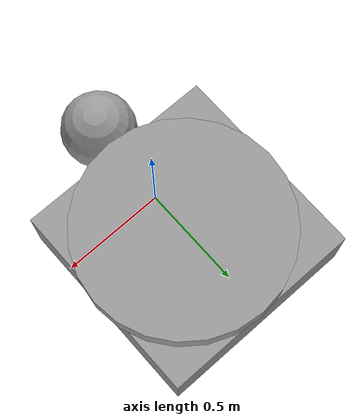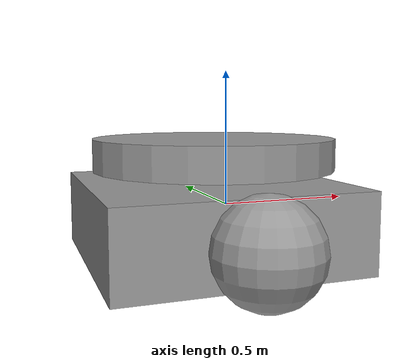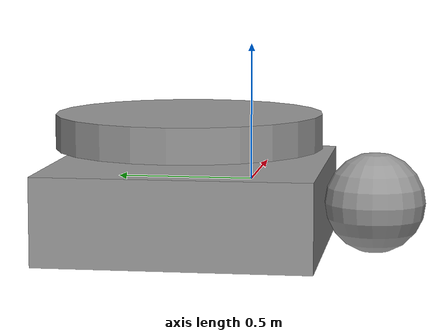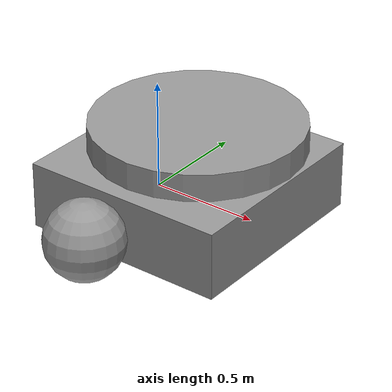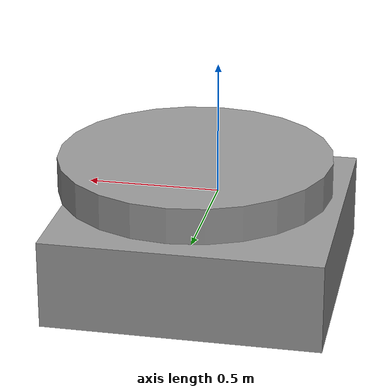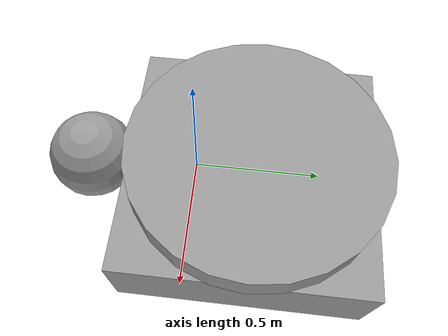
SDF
<?xml version='1.0'?>
<sdf version='1.7'>
  <model name='robotShip'>
    <link name='link_0'>
      <inertial>
        <mass>0.129554</mass>
        <inertia>
          <ixx>0.0082783</ixx>
          <ixy>0</ixy>
          <ixz>0</ixz>
          <iyy>0.0082783</iyy>
          <iyz>0</iyz>
          <izz>0.0161942</izz>
        </inertia>
        <pose>0 0 0 0 -0 0</pose>
      </inertial>
      <pose>0.03761 0.239048 0.173648 0 -0 0</pose>
      <visual name='visual'>
        <pose>0 0 0 0 -0 0</pose>
        <geometry>
          <cylinder>
            <radius>0.5</radius>
            <length>0.129553</length>
          </cylinder>
        </geometry>
        <material>
          <lighting>1</lighting>
          <script>
            <uri>file://media/materials/scripts/gazebo.material</uri>
            <name>Gazebo/Grey</name>
          </script>
          <shader type='pixel'/>
          <emissive>0 0 0 1</emissive>
        </material>
        <transparency>0</transparency>
        <cast_shadows>1</cast_shadows>
      </visual>
      <collision name='collision'>
        <laser_retro>0</laser_retro>
        <max_contacts>10</max_contacts>
        <pose>0 0 0 0 -0 0</pose>
        <geometry>
          <cylinder>
            <radius>0.5</radius>
            <length>0.129553</length>
          </cylinder>
        </geometry>
        <surface>
          <friction>
            <ode>
              <mu>1</mu>
              <mu2>1</mu2>
              <fdir1>0 0 0</fdir1>
              <slip1>0</slip1>
              <slip2>0</slip2>
            </ode>
            <torsional>
              <coefficient>1</coefficient>
              <patch_radius>0</patch_radius>
              <surface_radius>0</surface_radius>
              <use_patch_radius>1</use_patch_radius>
              <ode>
                <slip>0</slip>
              </ode>
            </torsional>
          </friction>
          <bounce>
            <restitution_coefficient>0</restitution_coefficient>
            <threshold>1e+06</threshold>
          </bounce>
          <contact>
            <collide_without_contact>0</collide_without_contact>
            <collide_without_contact_bitmask>1</collide_without_contact_bitmask>
            <collide_bitmask>1</collide_bitmask>
            <ode>
              <soft_cfm>0</soft_cfm>
              <soft_erp>0.2</soft_erp>
              <kp>1e+13</kp>
              <kd>1</kd>
              <max_vel>0.01</max_vel>
              <min_depth>0</min_depth>
            </ode>
            <bullet>
              <split_impulse>1</split_impulse>
              <split_impulse_penetration_threshold>-0.01</split_impulse_penetration_threshold>
              <soft_cfm>0</soft_cfm>
              <soft_erp>0.2</soft_erp>
              <kp>1e+13</kp>
              <kd>1</kd>
            </bullet>
          </contact>
        </surface>
      </collision>
    </link>
    <link name='link_1'>
      <inertial>
        <mass>0.0509107</mass>
        <inertia>
          <ixx>0.000699365</ixx>
          <ixy>0</ixy>
          <ixz>0</ixz>
          <iyy>0.000699365</iyy>
          <iyz>0</iyz>
          <izz>0.000699365</izz>
        </inertia>
        <pose>0 0 0 0 -0 0</pose>
      </inertial>
      <pose>-0.039655 -0.462186 -0.074538 0 -0 0</pose>
      <visual name='visual'>
        <pose>0 0 0 0 -0 0</pose>
        <geometry>
          <sphere>
            <radius>0.185318</radius>
          </sphere>
        </geometry>
        <material>
          <lighting>1</lighting>
          <script>
            <uri>file://media/materials/scripts/gazebo.material</uri>
            <name>Gazebo/Grey</name>
          </script>
          <shader type='pixel'/>
          <emissive>0 0 0 1</emissive>
        </material>
        <transparency>0</transparency>
        <cast_shadows>1</cast_shadows>
      </visual>
      <collision name='collision'>
        <laser_retro>0</laser_retro>
        <max_contacts>10</max_contacts>
        <pose>0 0 0 0 -0 0</pose>
        <geometry>
          <sphere>
            <radius>0.185318</radius>
          </sphere>
        </geometry>
        <surface>
          <friction>
            <ode>
              <mu>1</mu>
              <mu2>1</mu2>
              <fdir1>0 0 0</fdir1>
              <slip1>0</slip1>
              <slip2>0</slip2>
            </ode>
            <torsional>
              <coefficient>1</coefficient>
              <patch_radius>0</patch_radius>
              <surface_radius>0</surface_radius>
              <use_patch_radius>1</use_patch_radius>
              <ode>
                <slip>0</slip>
              </ode>
            </torsional>
          </friction>
          <bounce>
            <restitution_coefficient>0</restitution_coefficient>
            <threshold>1e+06</threshold>
          </bounce>
          <contact>
            <collide_without_contact>0</collide_without_contact>
            <collide_without_contact_bitmask>1</collide_without_contact_bitmask>
            <collide_bitmask>1</collide_bitmask>
            <ode>
              <soft_cfm>0</soft_cfm>
              <soft_erp>0.2</soft_erp>
              <kp>1e+13</kp>
              <kd>1</kd>
              <max_vel>0.01</max_vel>
              <min_depth>0</min_depth>
            </ode>
            <bullet>
              <split_impulse>1</split_impulse>
              <split_impulse_penetration_threshold>-0.01</split_impulse_penetration_threshold>
              <soft_cfm>0</soft_cfm>
              <soft_erp>0.2</soft_erp>
              <kp>1e+13</kp>
              <kd>1</kd>
            </bullet>
          </contact>
        </surface>
      </collision>
    </link>
    <link name='link_2'>
      <inertial>
        <mass>0.32103</mass>
        <inertia>
          <ixx>0.0295173</ixx>
          <ixy>0</ixy>
          <ixz>0</ixz>
          <iyy>0.029444</iyy>
          <iyz>0</iyz>
          <izz>0.0534317</izz>
        </inertia>
        <pose>0 0 0 0 -0 0</pose>
      </inertial>
      <pose>0.002045 0.223132 -0.099117 0 -0 0</pose>
      <visual name='visual'>
        <pose>0 0 0 0 -0 0</pose>
        <geometry>
          <box>
            <size>0.998629 1 0.321477</size>
          </box>
        </geometry>
        <material>
          <lighting>1</lighting>
          <script>
            <uri>file://media/materials/scripts/gazebo.material</uri>
            <name>Gazebo/Grey</name>
          </script>
          <shader type='pixel'/>
          <emissive>0 0 0 1</emissive>
        </material>
        <transparency>0</transparency>
        <cast_shadows>1</cast_shadows>
      </visual>
      <collision name='collision'>
        <laser_retro>0</laser_retro>
        <max_contacts>10</max_contacts>
        <pose>0 0 0 0 -0 0</pose>
        <geometry>
          <box>
            <size>0.998629 1 0.321477</size>
          </box>
        </geometry>
        <surface>
          <friction>
            <ode>
              <mu>1</mu>
              <mu2>1</mu2>
              <fdir1>0 0 0</fdir1>
              <slip1>0</slip1>
              <slip2>0</slip2>
            </ode>
            <torsional>
              <coefficient>1</coefficient>
              <patch_radius>0</patch_radius>
              <surface_radius>0</surface_radius>
              <use_patch_radius>1</use_patch_radius>
              <ode>
                <slip>0</slip>
              </ode>
            </torsional>
          </friction>
          <bounce>
            <restitution_coefficient>0</restitution_coefficient>
            <threshold>1e+06</threshold>
          </bounce>
          <contact>
            <collide_without_contact>0</collide_without_contact>
            <collide_without_contact_bitmask>1</collide_without_contact_bitmask>
            <collide_bitmask>1</collide_bitmask>
            <ode>
              <soft_cfm>0</soft_cfm>
              <soft_erp>0.2</soft_erp>
              <kp>1e+13</kp>
              <kd>1</kd>
              <max_vel>0.01</max_vel>
              <min_depth>0</min_depth>
            </ode>
            <bullet>
              <split_impulse>1</split_impulse>
              <split_impulse_penetration_threshold>-0.01</split_impulse_penetration_threshold>
              <soft_cfm>0</soft_cfm>
              <soft_erp>0.2</soft_erp>
              <kp>1e+13</kp>
              <kd>1</kd>
            </bullet>
          </contact>
        </surface>
      </collision>
    </link>
    <joint name='link_0_JOINT_0' type='revolute'>
      <parent>link_0</parent>
      <child>link_1</child>
      <pose>0 0 0 -0.04 0 0</pose>
      <axis>
        <xyz>0 0 1</xyz>
        <limit>
          <lower>-1.79769e+308</lower>
          <upper>1.79769e+308</upper>
          <effort>-1</effort>
          <velocity>-1</velocity>
        </limit>
        <dynamics>
          <spring_reference>0</spring_reference>
          <spring_stiffness>0</spring_stiffness>
          <damping>0</damping>
        </dynamics>
      </axis>
      <physics>
        <ode>
          <limit>
            <cfm>0</cfm>
            <erp>0.2</erp>
          </limit>
          <suspension>
            <cfm>0</cfm>
            <erp>0.2</erp>
          </suspension>
        </ode>
      </physics>
    </joint>
    <joint name='link_1_JOINT_2' type='revolute'>
      <parent>link_1</parent>
      <child>link_2</child>
      <pose>0 0 0 0 -0 0</pose>
      <axis>
        <xyz>0 0 1</xyz>
        <limit>
          <lower>-1.79769e+308</lower>
          <upper>1.79769e+308</upper>
          <effort>-1</effort>
          <velocity>-1</velocity>
        </limit>
        <dynamics>
          <spring_reference>0</spring_reference>
          <spring_stiffness>0</spring_stiffness>
          <damping>0</damping>
        </dynamics>
      </axis>
      <physics>
        <ode>
          <limit>
            <cfm>0</cfm>
            <erp>0.2</erp>
          </limit>
          <suspension>
            <cfm>0</cfm>
            <erp>0.2</erp>
          </suspension>
        </ode>
      </physics>
    </joint>
    <joint name='link_2_JOINT_1' type='revolute2'>
      <parent>link_2</parent>
      <child>link_0</child>
      <pose>0 0 0 0 -0 0</pose>
      <axis>
        <xyz>0 0 1</xyz>
        <limit>
          <lower>-1.79769e+308</lower>
          <upper>1.79769e+308</upper>
          <effort>-1</effort>
          <velocity>-1</velocity>
        </limit>
        <dynamics>
          <spring_reference>0</spring_reference>
          <spring_stiffness>0</spring_stiffness>
          <damping>0</damping>
        </dynamics>
      </axis>
      <axis2>
        <xyz>0 1 0</xyz>
        <limit>
          <lower>-1.79769e+308</lower>
          <upper>1.79769e+308</upper>
          <effort>-1</effort>
          <velocity>-1</velocity>
        </limit>
        <dynamics>
          <spring_reference>0</spring_reference>
          <spring_stiffness>0</spring_stiffness>
          <damping>0</damping>
        </dynamics>
      </axis2>
      <physics>
        <ode>
          <limit>
            <cfm>0</cfm>
            <erp>0.2</erp>
          </limit>
          <suspension>
            <cfm>0</cfm>
            <erp>0.2</erp>
          </suspension>
        </ode>
      </physics>
    </joint>
    <static>0</static>
    <allow_auto_disable>1</allow_auto_disable>
  </model>
</sdf>
